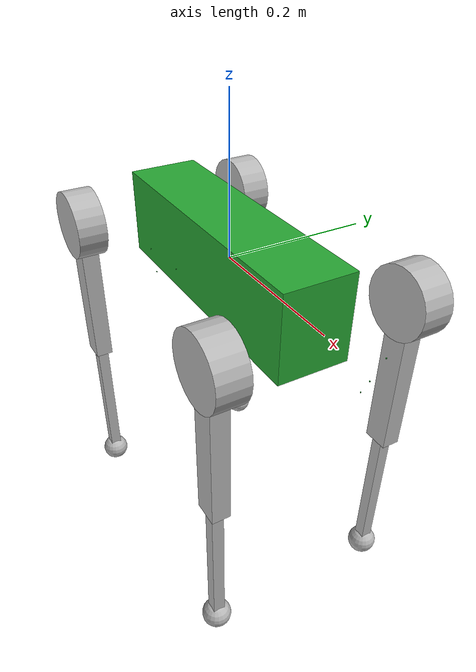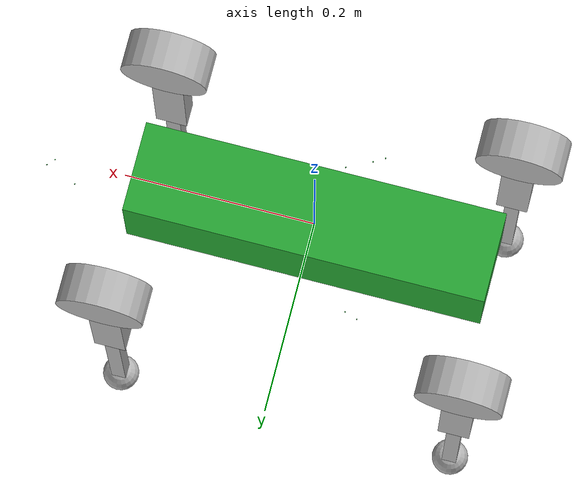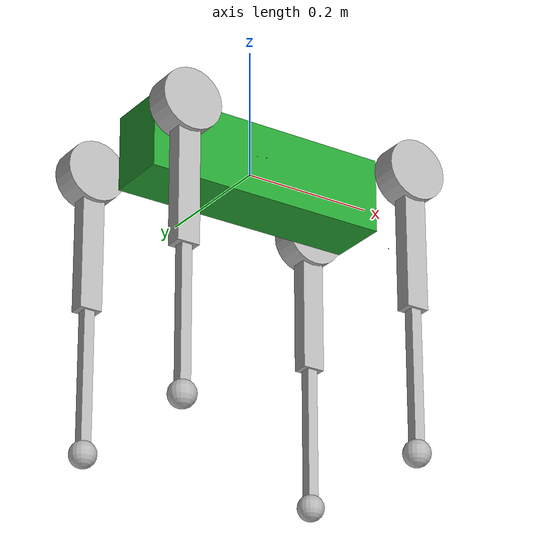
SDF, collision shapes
<sdf version='1.7'>
  <model name='a1'>
    <link name='base'>
      <inertial>
        <pose>0.020866 0.00186 -0.000469 0 -0 0</pose>
        <mass>5.56108</mass>
        <inertia>
          <ixx>0.0181527</ixx>
          <ixy>-0.000247078</ixy>
          <ixz>-0.000291004</ixz>
          <iyy>0.0680032</iyy>
          <iyz>-4.19233e-05</iyz>
          <izz>0.0774325</izz>
        </inertia>
      </inertial>
      <collision name='base_fixed_joint_lump__body_collision'>
        <pose>0 0 0 0 -0 0</pose>
        <geometry>
          <box>
            <size>0.3762 0.0935 0.114</size>
          </box>
        </geometry>
      </collision>
      <collision name='base_fixed_joint_lump__camera_chin_collision_1'>
        <pose>0.2522 0.0125 -0.0436 3.14159 1.5708 0</pose>
        <geometry>
          <box>
            <size>0.001 0.001 0.001</size>
          </box>
        </geometry>
        <surface>
          <contact>
            <ode/>
          </contact>
          <friction>
            <ode/>
          </friction>
        </surface>
      </collision>
      <collision name='base_fixed_joint_lump__camera_face_collision_2'>
        <pose>0.2785 0.0125 0.0167 3.14159 -0 0</pose>
        <geometry>
          <box>
            <size>0.001 0.001 0.001</size>
          </box>
        </geometry>
        <surface>
          <contact>
            <ode/>
          </contact>
          <friction>
            <ode/>
          </friction>
        </surface>
      </collision>
      <collision name='base_fixed_joint_lump__camera_left_collision_3'>
        <pose>-0.066 0.082 -0.0176 3.14159 0.2618 1.5708</pose>
        <geometry>
          <box>
            <size>0.001 0.001 0.001</size>
          </box>
        </geometry>
        <surface>
          <contact>
            <ode/>
          </contact>
          <friction>
            <ode/>
          </friction>
        </surface>
      </collision>
      <collision name='base_fixed_joint_lump__camera_rearDown_collision_4'>
        <pose>-0.0825 0.0125 -0.04365 3.14159 1.5708 0</pose>
        <geometry>
          <box>
            <size>0.001 0.001 0.001</size>
          </box>
        </geometry>
        <surface>
          <contact>
            <ode/>
          </contact>
          <friction>
            <ode/>
          </friction>
        </surface>
      </collision>
      <collision name='base_fixed_joint_lump__camera_right_collision_5'>
        <pose>-0.041 -0.082 -0.0176 3.14159 0.2618 -1.5708</pose>
        <geometry>
          <box>
            <size>0.001 0.001 0.001</size>
          </box>
        </geometry>
        <surface>
          <contact>
            <ode/>
          </contact>
          <friction>
            <ode/>
          </friction>
        </surface>
      </collision>
      <collision name='base_fixed_joint_lump__imu_link_collision_6'>
        <pose>-0.01592 -0.06659 -0.00617 0 -0 0</pose>
        <geometry>
          <box>
            <size>0.001 0.001 0.001</size>
          </box>
        </geometry>
        <surface>
          <contact>
            <ode/>
          </contact>
          <friction>
            <ode>
              <mu>0.2</mu>
              <mu2>0.2</mu2>
            </ode>
          </friction>
        </surface>
      </collision>
      <collision name='base_fixed_joint_lump__ultraSound_face_collision_7'>
        <pose>0.2747 0 -0.0088 0 -0 0</pose>
        <geometry>
          <box>
            <size>0.001 0.001 0.001</size>
          </box>
        </geometry>
      </collision>
      <collision name='base_fixed_joint_lump__ultraSound_left_collision_8'>
        <pose>-0.0535 0.0826 0.00868 0 0.2618 1.5708</pose>
        <geometry>
          <box>
            <size>0.001 0.001 0.001</size>
          </box>
        </geometry>
      </collision>
      <collision name='base_fixed_joint_lump__ultraSound_right_collision_9'>
        <pose>-0.0535 -0.0826 0.00868 0 0.2618 -1.5708</pose>
        <geometry>
          <box>
            <size>0.001 0.001 0.001</size>
          </box>
        </geometry>
      </collision>
      <visual name='base_visual'>
        <pose>0 0 0 0 -0 0</pose>
        <geometry>
          <box>
            <size>0.001 0.001 0.001</size>
          </box>
        </geometry>
        <material>
          <script>
            <name>Gazebo/Green</name>
            <uri>file://media/materials/scripts/gazebo.material</uri>
          </script>
        </material>
      </visual>
      <visual name='base_fixed_joint_lump__body_visual_1'>
        <pose>0 0 0 0 -0 0</pose>
        <geometry>
          <mesh>
            <scale>1 1 1</scale>
            <uri>model://a1_description/meshes/trunk.dae</uri>
          </mesh>
        </geometry>
      </visual>
      <visual name='base_fixed_joint_lump__0_hip_rotor_visual_2'>
        <pose>0.11215 0.04675 0 0 1.5708 0</pose>
        <geometry>
          <cylinder>
            <length>0.02</length>
            <radius>0.035</radius>
          </cylinder>
        </geometry>
      </visual>
      <visual name='base_fixed_joint_lump__1_hip_rotor_visual_3'>
        <pose>-0.11215 0.04675 0 0 1.5708 0</pose>
        <geometry>
          <cylinder>
            <length>0.02</length>
            <radius>0.035</radius>
          </cylinder>
        </geometry>
      </visual>
      <visual name='base_fixed_joint_lump__2_hip_rotor_visual_4'>
        <pose>0.11215 -0.04675 0 0 1.5708 0</pose>
        <geometry>
          <cylinder>
            <length>0.02</length>
            <radius>0.035</radius>
          </cylinder>
        </geometry>
      </visual>
      <visual name='base_fixed_joint_lump__3_hip_rotor_visual_5'>
        <pose>-0.11215 -0.04675 0 0 1.5708 0</pose>
        <geometry>
          <cylinder>
            <length>0.02</length>
            <radius>0.035</radius>
          </cylinder>
        </geometry>
      </visual>
      <visual name='base_fixed_joint_lump__camera_chin_visual_6'>
        <pose>0.2522 0.0125 -0.0436 3.14159 1.5708 0</pose>
        <geometry>
          <mesh>
            <scale>1 1 1</scale>
            <uri>model://a1_description/meshes/depthCamera.dae</uri>
          </mesh>
        </geometry>
      </visual>
      <visual name='base_fixed_joint_lump__camera_face_visual_7'>
        <pose>0.2785 0.0125 0.0167 3.14159 -0 0</pose>
        <geometry>
          <mesh>
            <scale>1 1 1</scale>
            <uri>model://a1_description/meshes/depthCamera.dae</uri>
          </mesh>
        </geometry>
      </visual>
      <visual name='base_fixed_joint_lump__camera_left_visual_8'>
        <pose>-0.066 0.082 -0.0176 3.14159 0.2618 1.5708</pose>
        <geometry>
          <mesh>
            <scale>1 1 1</scale>
            <uri>model://a1_description/meshes/depthCamera.dae</uri>
          </mesh>
        </geometry>
      </visual>
      <visual name='base_fixed_joint_lump__camera_rearDown_visual_9'>
        <pose>-0.0825 0.0125 -0.04365 3.14159 1.5708 0</pose>
        <geometry>
          <mesh>
            <scale>1 1 1</scale>
            <uri>model://a1_description/meshes/depthCamera.dae</uri>
          </mesh>
        </geometry>
      </visual>
      <visual name='base_fixed_joint_lump__camera_right_visual_10'>
        <pose>-0.041 -0.082 -0.0176 3.14159 0.2618 -1.5708</pose>
        <geometry>
          <mesh>
            <scale>1 1 1</scale>
            <uri>model://a1_description/meshes/depthCamera.dae</uri>
          </mesh>
        </geometry>
      </visual>
      <visual name='base_fixed_joint_lump__imu_link_visual_11'>
        <pose>-0.01592 -0.06659 -0.00617 0 -0 0</pose>
        <geometry>
          <box>
            <size>0.001 0.001 0.001</size>
          </box>
        </geometry>
        <material>
          <script>
            <name>Gazebo/Red</name>
            <uri>file://media/materials/scripts/gazebo.material</uri>
          </script>
        </material>
      </visual>
      <visual name='base_fixed_joint_lump__ultraSound_face_visual_12'>
        <pose>0.2747 0 -0.0088 0 -0 0</pose>
        <geometry>
          <mesh>
            <scale>1 1 1</scale>
            <uri>model://a1_description/meshes/ultraSound.dae</uri>
          </mesh>
        </geometry>
      </visual>
      <visual name='base_fixed_joint_lump__ultraSound_left_visual_13'>
        <pose>-0.0535 0.0826 0.00868 0 0.2618 1.5708</pose>
        <geometry>
          <mesh>
            <scale>1 1 1</scale>
            <uri>model://a1_description/meshes/ultraSound.dae</uri>
          </mesh>
        </geometry>
      </visual>
      <visual name='base_fixed_joint_lump__ultraSound_right_visual_14'>
        <pose>-0.0535 -0.0826 0.00868 0 0.2618 -1.5708</pose>
        <geometry>
          <mesh>
            <scale>1 1 1</scale>
            <uri>model://a1_description/meshes/ultraSound.dae</uri>
          </mesh>
        </geometry>
      </visual>
      <gravity>1</gravity>
      <sensor name='camera_chin_camera' type='depth'>
        <update_rate>16</update_rate>
        <camera>
          <horizontal_fov>2.094</horizontal_fov>
          <image>
            <width>928</width>
            <height>800</height>
            <format>R8G8B8</format>
          </image>
          <clip>
            <near>0.1</near>
            <far>5</far>
          </clip>
        </camera>
        <plugin name='camera_chin_controller' filename='libgazebo_ros_openni_kinect.so'>
          <baseline>0.025</baseline>
          <alwaysOn>1</alwaysOn>
          <updateRate>0.0</updateRate>
          <cameraName>camera_chin_ir</cameraName>
          <imageTopicName>/camera_chin/color/image_raw</imageTopicName>
          <cameraInfoTopicName>/camera_chin/color/camera_info</cameraInfoTopicName>
          <depthImageTopicName>/camera_chin/depth/image_raw</depthImageTopicName>
          <depthImageInfoTopicName>/camera_chin/depth/camera_info</depthImageInfoTopicName>
          <pointCloudTopicName>/cam2/point_cloud_chin</pointCloudTopicName>
          <frameName>camera_optical_chin</frameName>
          <pointCloudCutoff>0.1</pointCloudCutoff>
          <pointCloudCutoffMax>1.5</pointCloudCutoffMax>
          <distortionK1>0.0</distortionK1>
          <distortionK2>0.0</distortionK2>
          <distortionK3>0.0</distortionK3>
          <distortionT1>0.0</distortionT1>
          <distortionT2>0.0</distortionT2>
          <CxPrime>0</CxPrime>
          <Cx>0.0045</Cx>
          <Cy>0.0039</Cy>
          <focalLength>0</focalLength>
          <hackBaseline>0</hackBaseline>
        </plugin>
        <pose>0.2522 0.0125 -0.0436 3.14159 1.57079 3e-06</pose>
      </sensor>
      <sensor name='camera_face_camera' type='depth'>
        <update_rate>16</update_rate>
        <camera>
          <horizontal_fov>2.094</horizontal_fov>
          <image>
            <width>928</width>
            <height>800</height>
            <format>R8G8B8</format>
          </image>
          <clip>
            <near>0.1</near>
            <far>5</far>
          </clip>
        </camera>
        <plugin name='camera_face_controller' filename='libgazebo_ros_openni_kinect.so'>
          <baseline>0.025</baseline>
          <alwaysOn>1</alwaysOn>
          <updateRate>0.0</updateRate>
          <cameraName>camera_face_ir</cameraName>
          <imageTopicName>/camera_face/color/image_raw</imageTopicName>
          <cameraInfoTopicName>/camera_face/color/camera_info</cameraInfoTopicName>
          <depthImageTopicName>/camera_face/depth/image_raw</depthImageTopicName>
          <depthImageInfoTopicName>/camera_face/depth/camera_info</depthImageInfoTopicName>
          <pointCloudTopicName>/cam1/point_cloud_face</pointCloudTopicName>
          <frameName>camera_optical_face</frameName>
          <pointCloudCutoff>0.1</pointCloudCutoff>
          <pointCloudCutoffMax>1.5</pointCloudCutoffMax>
          <distortionK1>0.0</distortionK1>
          <distortionK2>0.0</distortionK2>
          <distortionK3>0.0</distortionK3>
          <distortionT1>0.0</distortionT1>
          <distortionT2>0.0</distortionT2>
          <CxPrime>0</CxPrime>
          <Cx>0.0045</Cx>
          <Cy>0.0039</Cy>
          <focalLength>0</focalLength>
          <hackBaseline>0</hackBaseline>
        </plugin>
        <pose>0.2785 0.0125 0.0167 3.14159 -0 0</pose>
      </sensor>
      <sensor name='camera_left_camera' type='depth'>
        <update_rate>16</update_rate>
        <camera>
          <horizontal_fov>2.094</horizontal_fov>
          <image>
            <width>928</width>
            <height>800</height>
            <format>R8G8B8</format>
          </image>
          <clip>
            <near>0.1</near>
            <far>5</far>
          </clip>
        </camera>
        <plugin name='camera_left_controller' filename='libgazebo_ros_openni_kinect.so'>
          <baseline>0.025</baseline>
          <alwaysOn>1</alwaysOn>
          <updateRate>0.0</updateRate>
          <cameraName>camera_left_ir</cameraName>
          <imageTopicName>/camera_left/color/image_raw</imageTopicName>
          <cameraInfoTopicName>/camera_left/color/camera_info</cameraInfoTopicName>
          <depthImageTopicName>/camera_left/depth/image_raw</depthImageTopicName>
          <depthImageInfoTopicName>/camera_left/depth/camera_info</depthImageInfoTopicName>
          <pointCloudTopicName>/cam3/point_cloud_left</pointCloudTopicName>
          <frameName>camera_optical_left</frameName>
          <pointCloudCutoff>0.1</pointCloudCutoff>
          <pointCloudCutoffMax>1.5</pointCloudCutoffMax>
          <distortionK1>0.0</distortionK1>
          <distortionK2>0.0</distortionK2>
          <distortionK3>0.0</distortionK3>
          <distortionT1>0.0</distortionT1>
          <distortionT2>0.0</distortionT2>
          <CxPrime>0</CxPrime>
          <Cx>0.0045</Cx>
          <Cy>0.0039</Cy>
          <focalLength>0</focalLength>
          <hackBaseline>0</hackBaseline>
        </plugin>
        <pose>-0.066 0.082 -0.0176 3.14159 0.2618 1.5708</pose>
      </sensor>
      <sensor name='camera_rearDown_camera' type='depth'>
        <update_rate>16</update_rate>
        <camera>
          <horizontal_fov>2.094</horizontal_fov>
          <image>
            <width>928</width>
            <height>800</height>
            <format>R8G8B8</format>
          </image>
          <clip>
            <near>0.1</near>
            <far>5</far>
          </clip>
        </camera>
        <plugin name='camera_rearDown_controller' filename='libgazebo_ros_openni_kinect.so'>
          <baseline>0.025</baseline>
          <alwaysOn>1</alwaysOn>
          <updateRate>0.0</updateRate>
          <cameraName>camera_rearDown_ir</cameraName>
          <imageTopicName>/camera_rearDown/color/image_raw</imageTopicName>
          <cameraInfoTopicName>/camera_rearDown/color/camera_info</cameraInfoTopicName>
          <depthImageTopicName>/camera_rearDown/depth/image_raw</depthImageTopicName>
          <depthImageInfoTopicName>/camera_rearDown/depth/camera_info</depthImageInfoTopicName>
          <pointCloudTopicName>/cam5/point_cloud_rearDown</pointCloudTopicName>
          <frameName>camera_optical_rearDown</frameName>
          <pointCloudCutoff>0.1</pointCloudCutoff>
          <pointCloudCutoffMax>1.5</pointCloudCutoffMax>
          <distortionK1>0.0</distortionK1>
          <distortionK2>0.0</distortionK2>
          <distortionK3>0.0</distortionK3>
          <distortionT1>0.0</distortionT1>
          <distortionT2>0.0</distortionT2>
          <CxPrime>0</CxPrime>
          <Cx>0.0045</Cx>
          <Cy>0.0039</Cy>
          <focalLength>0</focalLength>
          <hackBaseline>0</hackBaseline>
        </plugin>
        <pose>-0.0825 0.0125 -0.04365 3.14159 1.57079 3e-06</pose>
      </sensor>
      <sensor name='camera_right_camera' type='depth'>
        <update_rate>16</update_rate>
        <camera>
          <horizontal_fov>2.094</horizontal_fov>
          <image>
            <width>928</width>
            <height>800</height>
            <format>R8G8B8</format>
          </image>
          <clip>
            <near>0.1</near>
            <far>5</far>
          </clip>
        </camera>
        <plugin name='camera_right_controller' filename='libgazebo_ros_openni_kinect.so'>
          <baseline>0.025</baseline>
          <alwaysOn>1</alwaysOn>
          <updateRate>0.0</updateRate>
          <cameraName>camera_right_ir</cameraName>
          <imageTopicName>/camera_right/color/image_raw</imageTopicName>
          <cameraInfoTopicName>/camera_right/color/camera_info</cameraInfoTopicName>
          <depthImageTopicName>/camera_right/depth/image_raw</depthImageTopicName>
          <depthImageInfoTopicName>/camera_right/depth/camera_info</depthImageInfoTopicName>
          <pointCloudTopicName>/cam4/point_cloud_right</pointCloudTopicName>
          <frameName>camera_optical_right</frameName>
          <pointCloudCutoff>0.1</pointCloudCutoff>
          <pointCloudCutoffMax>1.5</pointCloudCutoffMax>
          <distortionK1>0.0</distortionK1>
          <distortionK2>0.0</distortionK2>
          <distortionK3>0.0</distortionK3>
          <distortionT1>0.0</distortionT1>
          <distortionT2>0.0</distortionT2>
          <CxPrime>0</CxPrime>
          <Cx>0.0045</Cx>
          <Cy>0.0039</Cy>
          <focalLength>0</focalLength>
          <hackBaseline>0</hackBaseline>
        </plugin>
        <pose>-0.041 -0.082 -0.0176 3.14159 0.2618 -1.5708</pose>
      </sensor>
      <gravity>1</gravity>
      <sensor name='imu_sensor' type='imu'>
        <always_on>1</always_on>
        <update_rate>1000</update_rate>
        <visualize>1</visualize>
        <topic>__default_topic__</topic>
        <plugin name='imu_plugin' filename='libgazebo_ros_imu_sensor.so'>
          <topicName>trunk_imu</topicName>
          <bodyName>imu_link</bodyName>
          <updateRateHZ>1000.0</updateRateHZ>
          <gaussianNoise>0.0</gaussianNoise>
          <xyzOffset>0 0 0</xyzOffset>
          <rpyOffset>0 0 0</rpyOffset>
          <frameName>imu_link</frameName>
        </plugin>
        <pose>-0.01592 -0.06659 -0.00617 0 -0 0</pose>
      </sensor>
    </link>
    <joint name='10' type='revolute'>
      <pose relative_to='base'>0.1881 -0.04675 0 0 -0 0</pose>
      <parent>base</parent>
      <child>hip2</child>
      <axis>
        <xyz>1 0 0</xyz>
        <limit>
          <lower>-0.863</lower>
          <upper>0.863</upper>
          <effort>23.7</effort>
          <velocity>30.1</velocity>
        </limit>
        <dynamics>
          <damping>0.01</damping>
          <friction>0.2</friction>
          <spring_reference>0</spring_reference>
          <spring_stiffness>0</spring_stiffness>
        </dynamics>
      </axis>
    </joint>
    <link name='hip2'>
      <pose relative_to='10'>0 0 0 0 -0 0</pose>
      <inertial>
        <pose>-0.004917 0.007626 -8.9e-05 0 -0 0</pose>
        <mass>0.68</mass>
        <inertia>
          <ixx>0.00039938</ixx>
          <ixy>1.45901e-05</ixy>
          <ixz>1.2461e-06</ixz>
          <iyy>0.000733419</iyy>
          <iyz>-1.57533e-06</iyz>
          <izz>0.000468422</izz>
        </inertia>
      </inertial>
      <collision name='hip2_collision'>
        <pose>0 -0.08 0 1.5708 -0 0</pose>
        <geometry>
          <cylinder>
            <length>0.04</length>
            <radius>0.046</radius>
          </cylinder>
        </geometry>
      </collision>
      <visual name='hip2_visual'>
        <pose>0 0 0 3.14159 -0 0</pose>
        <geometry>
          <mesh>
            <scale>1 1 1</scale>
            <uri>model://a1_description/meshes/hip.dae</uri>
          </mesh>
        </geometry>
      </visual>
      <visual name='hip2_fixed_joint_lump__2_thigh_rotor_visual_1'>
        <pose>0 0.00015 0 1.5708 -0 0</pose>
        <geometry>
          <cylinder>
            <length>0.02</length>
            <radius>0.035</radius>
          </cylinder>
        </geometry>
      </visual>
    </link>
    <joint name='4' type='revolute'>
      <pose relative_to='hip2'>0 -0.08 0 0 -0 0</pose>
      <parent>hip2</parent>
      <child>upper2</child>
      <axis>
        <xyz>0 1 0</xyz>
        <limit>
          <lower>-0.686</lower>
          <upper>4.501</upper>
          <effort>23.7</effort>
          <velocity>30.1</velocity>
        </limit>
        <dynamics>
          <damping>0.01</damping>
          <friction>0.2</friction>
          <spring_reference>0</spring_reference>
          <spring_stiffness>0</spring_stiffness>
        </dynamics>
      </axis>
    </joint>
    <link name='upper2'>
      <pose relative_to='4'>0 0 0 0 -0 0</pose>
      <inertial>
        <pose>-0.003047 0.019315 -0.0305 0 -0 0</pose>
        <mass>1.009</mass>
        <inertia>
          <ixx>0.0045988</ixx>
          <ixy>-6.13739e-05</ixy>
          <ixz>-0.000227529</ixz>
          <iyy>0.00468922</iyy>
          <iyz>-0.000610808</iyz>
          <izz>0.000817448</izz>
        </inertia>
      </inertial>
      <collision name='upper2_collision'>
        <pose>0 0 -0.1065 0 1.5708 0</pose>
        <geometry>
          <box>
            <size>0.213 0.0245 0.034</size>
          </box>
        </geometry>
      </collision>
      <visual name='upper2_visual'>
        <pose>0 0 0 0 -0 0</pose>
        <geometry>
          <mesh>
            <scale>1 1 1</scale>
            <uri>model://a1_description/meshes/thigh_mirror.dae</uri>
          </mesh>
        </geometry>
      </visual>
      <visual name='upper2_fixed_joint_lump__2_calf_rotor_visual_1'>
        <pose>0 0.03235 0 1.5708 -0 0</pose>
        <geometry>
          <cylinder>
            <length>0.02</length>
            <radius>0.035</radius>
          </cylinder>
        </geometry>
      </visual>
    </link>
    <joint name='5' type='revolute'>
      <pose relative_to='upper2'>0 0 -0.213 0 -0 0</pose>
      <parent>upper2</parent>
      <child>lower2</child>
      <axis>
        <xyz>0 1 0</xyz>
        <limit>
          <lower>-2.818</lower>
          <upper>-0.888</upper>
          <effort>35.55</effort>
          <velocity>20.06</velocity>
        </limit>
        <dynamics>
          <damping>0.01</damping>
          <friction>0.2</friction>
          <spring_reference>0</spring_reference>
          <spring_stiffness>0</spring_stiffness>
        </dynamics>
      </axis>
    </joint>
    <link name='lower2'>
      <pose relative_to='5'>0 0 0 0 -0 0</pose>
      <inertial>
        <pose>0.004299 0.000977 -0.146197 0 -0 0</pose>
        <mass>0.195862</mass>
        <inertia>
          <ixx>0.00148448</ixx>
          <ixy>-6.18827e-07</ixy>
          <ixz>-1.77209e-05</ixz>
          <iyy>0.00149764</iyy>
          <iyz>-3.56626e-06</iyz>
          <izz>3.60683e-05</izz>
        </inertia>
      </inertial>
      <collision name='lower2_collision'>
        <pose>0 0 -0.1065 0 1.5708 0</pose>
        <geometry>
          <box>
            <size>0.213 0.016 0.016</size>
          </box>
        </geometry>
      </collision>
      <collision name='lower2_fixed_joint_lump__toe2_collision_collision_1'>
        <pose>0 0 -0.213 0 -0 0</pose>
        <geometry>
          <sphere>
            <radius>0.02</radius>
          </sphere>
        </geometry>
      </collision>
      <visual name='lower2_visual'>
        <pose>0 0 0 0 -0 0</pose>
        <geometry>
          <mesh>
            <scale>1 1 1</scale>
            <uri>model://a1_description/meshes/calf.dae</uri>
          </mesh>
        </geometry>
      </visual>
      <visual name='lower2_fixed_joint_lump__toe2_visual_1'>
        <pose>0 0 -0.213 0 -0 0</pose>
        <geometry>
          <sphere>
            <radius>0.01</radius>
          </sphere>
        </geometry>
      </visual>
    </link>
    <joint name='11' type='revolute'>
      <pose relative_to='base'>-0.1881 -0.04675 0 0 -0 0</pose>
      <parent>base</parent>
      <child>hip3</child>
      <axis>
        <xyz>1 0 0</xyz>
        <limit>
          <lower>-0.863</lower>
          <upper>0.863</upper>
          <effort>23.7</effort>
          <velocity>30.1</velocity>
        </limit>
        <dynamics>
          <damping>0.01</damping>
          <friction>0.2</friction>
          <spring_reference>0</spring_reference>
          <spring_stiffness>0</spring_stiffness>
        </dynamics>
      </axis>
    </joint>
    <link name='hip3'>
      <pose relative_to='11'>0 0 0 0 -0 0</pose>
      <inertial>
        <pose>0.004917 0.007626 -8.9e-05 0 -0 0</pose>
        <mass>0.68</mass>
        <inertia>
          <ixx>0.00039938</ixx>
          <ixy>-1.45901e-05</ixy>
          <ixz>-1.2461e-06</ixz>
          <iyy>0.000733419</iyy>
          <iyz>-1.57533e-06</iyz>
          <izz>0.000468422</izz>
        </inertia>
      </inertial>
      <collision name='hip3_collision'>
        <pose>0 -0.08 0 1.5708 -0 0</pose>
        <geometry>
          <cylinder>
            <length>0.04</length>
            <radius>0.046</radius>
          </cylinder>
        </geometry>
      </collision>
      <visual name='hip3_visual'>
        <pose>0 0 0 -0 0 3.14159</pose>
        <geometry>
          <mesh>
            <scale>1 1 1</scale>
            <uri>model://a1_description/meshes/hip.dae</uri>
          </mesh>
        </geometry>
      </visual>
      <visual name='hip3_fixed_joint_lump__3_thigh_rotor_visual_1'>
        <pose>0 0.00015 0 1.5708 -0 0</pose>
        <geometry>
          <cylinder>
            <length>0.02</length>
            <radius>0.035</radius>
          </cylinder>
        </geometry>
      </visual>
    </link>
    <joint name='6' type='revolute'>
      <pose relative_to='hip3'>0 -0.08 0 0 -0 0</pose>
      <parent>hip3</parent>
      <child>upper3</child>
      <axis>
        <xyz>0 1 0</xyz>
        <limit>
          <lower>-0.686</lower>
          <upper>4.501</upper>
          <effort>23.7</effort>
          <velocity>30.1</velocity>
        </limit>
        <dynamics>
          <damping>0.01</damping>
          <friction>0.2</friction>
          <spring_reference>0</spring_reference>
          <spring_stiffness>0</spring_stiffness>
        </dynamics>
      </axis>
    </joint>
    <link name='upper3'>
      <pose relative_to='6'>0 0 0 0 -0 0</pose>
      <inertial>
        <pose>-0.003047 0.019315 -0.0305 0 -0 0</pose>
        <mass>1.009</mass>
        <inertia>
          <ixx>0.0045988</ixx>
          <ixy>-6.13739e-05</ixy>
          <ixz>-0.000227529</ixz>
          <iyy>0.00468922</iyy>
          <iyz>-0.000610808</iyz>
          <izz>0.000817448</izz>
        </inertia>
      </inertial>
      <collision name='upper3_collision'>
        <pose>0 0 -0.1065 0 1.5708 0</pose>
        <geometry>
          <box>
            <size>0.213 0.0245 0.034</size>
          </box>
        </geometry>
      </collision>
      <visual name='upper3_visual'>
        <pose>0 0 0 0 -0 0</pose>
        <geometry>
          <mesh>
            <scale>1 1 1</scale>
            <uri>model://a1_description/meshes/thigh_mirror.dae</uri>
          </mesh>
        </geometry>
      </visual>
      <visual name='upper3_fixed_joint_lump__3_calf_rotor_visual_1'>
        <pose>0 0.03235 0 1.5708 -0 0</pose>
        <geometry>
          <cylinder>
            <length>0.02</length>
            <radius>0.035</radius>
          </cylinder>
        </geometry>
      </visual>
    </link>
    <joint name='7' type='revolute'>
      <pose relative_to='upper3'>0 0 -0.213 0 -0 0</pose>
      <parent>upper3</parent>
      <child>lower3</child>
      <axis>
        <xyz>0 1 0</xyz>
        <limit>
          <lower>-2.818</lower>
          <upper>-0.888</upper>
          <effort>35.55</effort>
          <velocity>20.06</velocity>
        </limit>
        <dynamics>
          <damping>0.01</damping>
          <friction>0.2</friction>
          <spring_reference>0</spring_reference>
          <spring_stiffness>0</spring_stiffness>
        </dynamics>
      </axis>
    </joint>
    <link name='lower3'>
      <pose relative_to='7'>0 0 0 0 -0 0</pose>
      <inertial>
        <pose>0.004299 0.000977 -0.146197 0 -0 0</pose>
        <mass>0.195862</mass>
        <inertia>
          <ixx>0.00148448</ixx>
          <ixy>-6.18827e-07</ixy>
          <ixz>-1.77209e-05</ixz>
          <iyy>0.00149764</iyy>
          <iyz>-3.56626e-06</iyz>
          <izz>3.60683e-05</izz>
        </inertia>
      </inertial>
      <collision name='lower3_collision'>
        <pose>0 0 -0.1065 0 1.5708 0</pose>
        <geometry>
          <box>
            <size>0.213 0.016 0.016</size>
          </box>
        </geometry>
      </collision>
      <collision name='lower3_fixed_joint_lump__toe3_collision_collision_1'>
        <pose>0 0 -0.213 0 -0 0</pose>
        <geometry>
          <sphere>
            <radius>0.02</radius>
          </sphere>
        </geometry>
      </collision>
      <visual name='lower3_visual'>
        <pose>0 0 0 0 -0 0</pose>
        <geometry>
          <mesh>
            <scale>1 1 1</scale>
            <uri>model://a1_description/meshes/calf.dae</uri>
          </mesh>
        </geometry>
      </visual>
      <visual name='lower3_fixed_joint_lump__toe3_visual_1'>
        <pose>0 0 -0.213 0 -0 0</pose>
        <geometry>
          <sphere>
            <radius>0.01</radius>
          </sphere>
        </geometry>
      </visual>
    </link>
    <joint name='8' type='revolute'>
      <pose relative_to='base'>0.1881 0.04675 0 0 -0 0</pose>
      <parent>base</parent>
      <child>hip0</child>
      <axis>
        <xyz>1 0 0</xyz>
        <limit>
          <lower>-0.863</lower>
          <upper>0.863</upper>
          <effort>23.7</effort>
          <velocity>30.1</velocity>
        </limit>
        <dynamics>
          <damping>0.01</damping>
          <friction>0.2</friction>
          <spring_reference>0</spring_reference>
          <spring_stiffness>0</spring_stiffness>
        </dynamics>
      </axis>
    </joint>
    <link name='hip0'>
      <pose relative_to='8'>0 0 0 0 -0 0</pose>
      <inertial>
        <pose>-0.004917 -0.007626 -8.9e-05 0 -0 0</pose>
        <mass>0.68</mass>
        <inertia>
          <ixx>0.00039938</ixx>
          <ixy>-1.45901e-05</ixy>
          <ixz>1.2461e-06</ixz>
          <iyy>0.000733419</iyy>
          <iyz>1.57533e-06</iyz>
          <izz>0.000468422</izz>
        </inertia>
      </inertial>
      <collision name='hip0_collision'>
        <pose>0 0.08 0 1.5708 -0 0</pose>
        <geometry>
          <cylinder>
            <length>0.04</length>
            <radius>0.046</radius>
          </cylinder>
        </geometry>
      </collision>
      <visual name='hip0_visual'>
        <pose>0 0 0 0 -0 0</pose>
        <geometry>
          <mesh>
            <scale>1 1 1</scale>
            <uri>model://a1_description/meshes/hip.dae</uri>
          </mesh>
        </geometry>
      </visual>
      <visual name='hip0_fixed_joint_lump__0_thigh_rotor_visual_1'>
        <pose>0 -0.00015 0 1.5708 -0 0</pose>
        <geometry>
          <cylinder>
            <length>0.02</length>
            <radius>0.035</radius>
          </cylinder>
        </geometry>
      </visual>
    </link>
    <joint name='0' type='revolute'>
      <pose relative_to='hip0'>0 0.08 0 0 -0 0</pose>
      <parent>hip0</parent>
      <child>upper0</child>
      <axis>
        <xyz>0 1 0</xyz>
        <limit>
          <lower>-0.686</lower>
          <upper>4.501</upper>
          <effort>23.7</effort>
          <velocity>30.1</velocity>
        </limit>
        <dynamics>
          <damping>0.01</damping>
          <friction>0.2</friction>
          <spring_reference>0</spring_reference>
          <spring_stiffness>0</spring_stiffness>
        </dynamics>
      </axis>
    </joint>
    <link name='upper0'>
      <pose relative_to='0'>0 0 0 0 -0 0</pose>
      <inertial>
        <pose>-0.003047 -0.019315 -0.0305 0 -0 0</pose>
        <mass>1.009</mass>
        <inertia>
          <ixx>0.0045988</ixx>
          <ixy>6.13739e-05</ixy>
          <ixz>-0.000227529</ixz>
          <iyy>0.00468922</iyy>
          <iyz>0.000610808</iyz>
          <izz>0.000817448</izz>
        </inertia>
      </inertial>
      <collision name='upper0_collision'>
        <pose>0 0 -0.1065 0 1.5708 0</pose>
        <geometry>
          <box>
            <size>0.213 0.0245 0.034</size>
          </box>
        </geometry>
      </collision>
      <visual name='upper0_visual'>
        <pose>0 0 0 0 -0 0</pose>
        <geometry>
          <mesh>
            <scale>1 1 1</scale>
            <uri>model://a1_description/meshes/thigh.dae</uri>
          </mesh>
        </geometry>
      </visual>
      <visual name='upper0_fixed_joint_lump__0_calf_rotor_visual_1'>
        <pose>0 -0.03235 0 1.5708 -0 0</pose>
        <geometry>
          <cylinder>
            <length>0.02</length>
            <radius>0.035</radius>
          </cylinder>
        </geometry>
      </visual>
    </link>
    <joint name='1' type='revolute'>
      <pose relative_to='upper0'>0 0 -0.213 0 -0 0</pose>
      <parent>upper0</parent>
      <child>lower0</child>
      <axis>
        <xyz>0 1 0</xyz>
        <limit>
          <lower>-2.818</lower>
          <upper>-0.888</upper>
          <effort>35.55</effort>
          <velocity>20.06</velocity>
        </limit>
        <dynamics>
          <damping>0.01</damping>
          <friction>0.2</friction>
          <spring_reference>0</spring_reference>
          <spring_stiffness>0</spring_stiffness>
        </dynamics>
      </axis>
    </joint>
    <link name='lower0'>
      <pose relative_to='1'>0 0 0 0 -0 0</pose>
      <inertial>
        <pose>0.004299 0.000977 -0.146197 0 -0 0</pose>
        <mass>0.195862</mass>
        <inertia>
          <ixx>0.00148448</ixx>
          <ixy>-6.18827e-07</ixy>
          <ixz>-1.77209e-05</ixz>
          <iyy>0.00149764</iyy>
          <iyz>-3.56626e-06</iyz>
          <izz>3.60683e-05</izz>
        </inertia>
      </inertial>
      <collision name='lower0_collision'>
        <pose>0 0 -0.1065 0 1.5708 0</pose>
        <geometry>
          <box>
            <size>0.213 0.016 0.016</size>
          </box>
        </geometry>
      </collision>
      <collision name='lower0_fixed_joint_lump__toe0_collision_collision_1'>
        <pose>0 0 -0.213 0 -0 0</pose>
        <geometry>
          <sphere>
            <radius>0.02</radius>
          </sphere>
        </geometry>
      </collision>
      <visual name='lower0_visual'>
        <pose>0 0 0 0 -0 0</pose>
        <geometry>
          <mesh>
            <scale>1 1 1</scale>
            <uri>model://a1_description/meshes/calf.dae</uri>
          </mesh>
        </geometry>
      </visual>
      <visual name='lower0_fixed_joint_lump__toe0_visual_1'>
        <pose>0 0 -0.213 0 -0 0</pose>
        <geometry>
          <sphere>
            <radius>0.01</radius>
          </sphere>
        </geometry>
      </visual>
    </link>
    <joint name='9' type='revolute'>
      <pose relative_to='base'>-0.1881 0.04675 0 0 -0 0</pose>
      <parent>base</parent>
      <child>hip1</child>
      <axis>
        <xyz>1 0 0</xyz>
        <limit>
          <lower>-0.863</lower>
          <upper>0.863</upper>
          <effort>23.7</effort>
          <velocity>30.1</velocity>
        </limit>
        <dynamics>
          <damping>0.01</damping>
          <friction>0.2</friction>
          <spring_reference>0</spring_reference>
          <spring_stiffness>0</spring_stiffness>
        </dynamics>
      </axis>
    </joint>
    <link name='hip1'>
      <pose relative_to='9'>0 0 0 0 -0 0</pose>
      <inertial>
        <pose>0.004917 -0.007626 -8.9e-05 0 -0 0</pose>
        <mass>0.68</mass>
        <inertia>
          <ixx>0.00039938</ixx>
          <ixy>1.45901e-05</ixy>
          <ixz>-1.2461e-06</ixz>
          <iyy>0.000733419</iyy>
          <iyz>1.57533e-06</iyz>
          <izz>0.000468422</izz>
        </inertia>
      </inertial>
      <collision name='hip1_collision'>
        <pose>0 0.08 0 1.5708 -0 0</pose>
        <geometry>
          <cylinder>
            <length>0.04</length>
            <radius>0.046</radius>
          </cylinder>
        </geometry>
      </collision>
      <visual name='hip1_visual'>
        <pose>0 0 0 3.14159 0 3.14159</pose>
        <geometry>
          <mesh>
            <scale>1 1 1</scale>
            <uri>model://a1_description/meshes/hip.dae</uri>
          </mesh>
        </geometry>
      </visual>
      <visual name='hip1_fixed_joint_lump__1_thigh_rotor_visual_1'>
        <pose>0 -0.00015 0 1.5708 -0 0</pose>
        <geometry>
          <cylinder>
            <length>0.02</length>
            <radius>0.035</radius>
          </cylinder>
        </geometry>
      </visual>
    </link>
    <joint name='2' type='revolute'>
      <pose relative_to='hip1'>0 0.08 0 0 -0 0</pose>
      <parent>hip1</parent>
      <child>upper1</child>
      <axis>
        <xyz>0 1 0</xyz>
        <limit>
          <lower>-0.686</lower>
          <upper>4.501</upper>
          <effort>23.7</effort>
          <velocity>30.1</velocity>
        </limit>
        <dynamics>
          <damping>0.01</damping>
          <friction>0.2</friction>
          <spring_reference>0</spring_reference>
          <spring_stiffness>0</spring_stiffness>
        </dynamics>
      </axis>
    </joint>
    <link name='upper1'>
      <pose relative_to='2'>0 0 0 0 -0 0</pose>
      <inertial>
        <pose>-0.003047 -0.019315 -0.0305 0 -0 0</pose>
        <mass>1.009</mass>
        <inertia>
          <ixx>0.0045988</ixx>
          <ixy>6.13739e-05</ixy>
          <ixz>-0.000227529</ixz>
          <iyy>0.00468922</iyy>
          <iyz>0.000610808</iyz>
          <izz>0.000817448</izz>
        </inertia>
      </inertial>
      <collision name='upper1_collision'>
        <pose>0 0 -0.1065 0 1.5708 0</pose>
        <geometry>
          <box>
            <size>0.213 0.0245 0.034</size>
          </box>
        </geometry>
      </collision>
      <visual name='upper1_visual'>
        <pose>0 0 0 0 -0 0</pose>
        <geometry>
          <mesh>
            <scale>1 1 1</scale>
            <uri>model://a1_description/meshes/thigh.dae</uri>
          </mesh>
        </geometry>
      </visual>
      <visual name='upper1_fixed_joint_lump__1_calf_rotor_visual_1'>
        <pose>0 -0.03235 0 1.5708 -0 0</pose>
        <geometry>
          <cylinder>
            <length>0.02</length>
            <radius>0.035</radius>
          </cylinder>
        </geometry>
      </visual>
    </link>
    <joint name='3' type='revolute'>
      <pose relative_to='upper1'>0 0 -0.213 0 -0 0</pose>
      <parent>upper1</parent>
      <child>lower1</child>
      <axis>
        <xyz>0 1 0</xyz>
        <limit>
          <lower>-2.818</lower>
          <upper>-0.888</upper>
          <effort>35.55</effort>
          <velocity>20.06</velocity>
        </limit>
        <dynamics>
          <damping>0.01</damping>
          <friction>0.2</friction>
          <spring_reference>0</spring_reference>
          <spring_stiffness>0</spring_stiffness>
        </dynamics>
      </axis>
    </joint>
    <link name='lower1'>
      <pose relative_to='3'>0 0 0 0 -0 0</pose>
      <inertial>
        <pose>0.004299 0.000977 -0.146197 0 -0 0</pose>
        <mass>0.195862</mass>
        <inertia>
          <ixx>0.00148448</ixx>
          <ixy>-6.18827e-07</ixy>
          <ixz>-1.77209e-05</ixz>
          <iyy>0.00149764</iyy>
          <iyz>-3.56626e-06</iyz>
          <izz>3.60683e-05</izz>
        </inertia>
      </inertial>
      <collision name='lower1_collision'>
        <pose>0 0 -0.1065 0 1.5708 0</pose>
        <geometry>
          <box>
            <size>0.213 0.016 0.016</size>
          </box>
        </geometry>
      </collision>
      <collision name='lower1_fixed_joint_lump__toe1_collision_collision_1'>
        <pose>0 0 -0.213 0 -0 0</pose>
        <geometry>
          <sphere>
            <radius>0.02</radius>
          </sphere>
        </geometry>
      </collision>
      <visual name='lower1_visual'>
        <pose>0 0 0 0 -0 0</pose>
        <geometry>
          <mesh>
            <scale>1 1 1</scale>
            <uri>model://a1_description/meshes/calf.dae</uri>
          </mesh>
        </geometry>
      </visual>
      <visual name='lower1_fixed_joint_lump__toe1_visual_1'>
        <pose>0 0 -0.213 0 -0 0</pose>
        <geometry>
          <sphere>
            <radius>0.01</radius>
          </sphere>
        </geometry>
      </visual>
    </link>
    <plugin name='gazebo_ros_control' filename='libgazebo_ros_control.so'>
      <robotNamespace>/a1_gazebo</robotNamespace>
      <robotSimType>gazebo_ros_control/DefaultRobotHWSim</robotSimType>
    </plugin>
    <plugin name='3dplot' filename='libLinkPlot3DPlugin.so'>
      <frequency>10</frequency>
      <plot>
        <link>base</link>
        <pose>0 0 0 0 0 0</pose>
        <material>Gazebo/Yellow</material>
      </plot>
    </plugin>
    <static>0</static>
    <plugin name='gazebo_ros_force' filename='libgazebo_ros_force.so'>
      <topicName>/apply_force/trunk</topicName>
      <bodyName>base</bodyName>
      <xyzOffset>0 0 0</xyzOffset>
      <rpyOffset>0 -0 0</rpyOffset>
    </plugin>
  </model>
</sdf>
